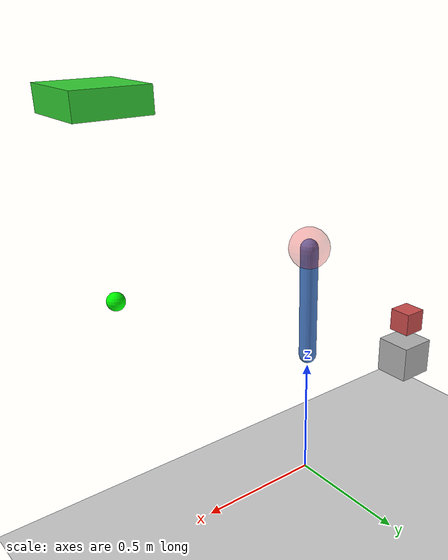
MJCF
<mujoco model="sensor_suite">
    <compiler angle="radian" autolimits="true"/>
    <option timestep="0.002" gravity="0 0 -9.81" magnetic="0.2 0.1 0.5"/>

    <default>
        <joint damping="0.05" armature="0.01"/>
        <geom rgba="0.3 0.5 0.8 1"/>
        <site size="0.025" rgba="1 0.2 0.2 1"/>
    </default>

    <worldbody>
        <light name="top_light" pos="0 0 4" dir="0 0 -1"/>
        <geom name="ground" type="plane" size="3 3 0.05" rgba="0.8 0.8 0.8 1"/>
        <body name="range_target_body" pos="0.8 0 1.6">
            <geom name="range_target" type="box" size="0.12 0.12 0.04"
                  rgba="0.2 0.8 0.2 1"/>
        </body>

        <site name="range_site" pos="0.8 0 1.0" size="0.03" rgba="0 1 0 1"/>

        <body name="wrench_parent" pos="-0.6 0 0.35">
            <geom name="parent_box" type="box" size="0.08 0.08 0.08" mass="1.0" rgba="0.7 0.7 0.7 1"/>
            <body name="wrench_child" pos="0 0 0.18">
                <geom name="child_box" type="box" size="0.05 0.05 0.05" mass="0.4" rgba="0.8 0.3 0.3 1"/>
                <site name="wrench_site" pos="0 0 0" size="0.02" rgba="1 1 0 1"/>
            </body>
        </body>

        <body name="link1" pos="0 0 0.55">
            <joint name="hinge" type="hinge" axis="0 1 0" limited="true" range="-1.2 1.2"/>
            <geom name="link_capsule" type="capsule" fromto="0 0 0 0 0 0.45" size="0.035" mass="0.5"/>
            <site name="imu_site" pos="0 0 0.42"/>
            <site name="touch_zone" type="sphere" pos="0 0 0.45" size="0.08" rgba="0.9 0.1 0.1 0.3"/>
        </body>
    </worldbody>

    <actuator>
        <motor name="hinge_motor" joint="hinge" ctrlrange="-2 2" gear="1"/>
    </actuator>

    <sensor>
        <touch name="touch_sum" site="touch_zone"/>
        <accelerometer name="imu_accel" site="imu_site"/>
        <velocimeter name="imu_velocity" site="imu_site"/>
        <gyro name="imu_gyro" site="imu_site"/>
        <force name="wrench_force" site="wrench_site"/>
        <torque name="wrench_torque" site="wrench_site"/>
        <magnetometer name="imu_magnetometer" site="imu_site"/>
        <rangefinder name="target_range" site="range_site"/>
        <jointpos name="hinge_position" joint="hinge"/>
        <jointvel name="hinge_velocity" joint="hinge"/>
        <actuatorfrc name="motor_force" actuator="hinge_motor"/>
        <jointactuatorfrc name="joint_motor_force" joint="hinge"/>
        <framepos name="imu_frame_position" objtype="site" objname="imu_site"/>
        <framequat name="imu_frame_quaternion" objtype="site" objname="imu_site"/>
        <framelinvel name="imu_frame_linear_velocity" objtype="site" objname="imu_site"/>
        <frameangvel name="imu_frame_angular_velocity" objtype="site" objname="imu_site"/>
        <subtreecom name="link_subtree_com" body="link1"/>
        <subtreelinvel name="link_subtree_linear_velocity" body="link1"/>
        <subtreeangmom name="link_subtree_angular_momentum" body="link1"/>
        <clock name="simulation_clock"/>
        <user name="user_link_state" objtype="body" objname="link1" dim="2" needstage="vel"/>
    </sensor>
</mujoco>
